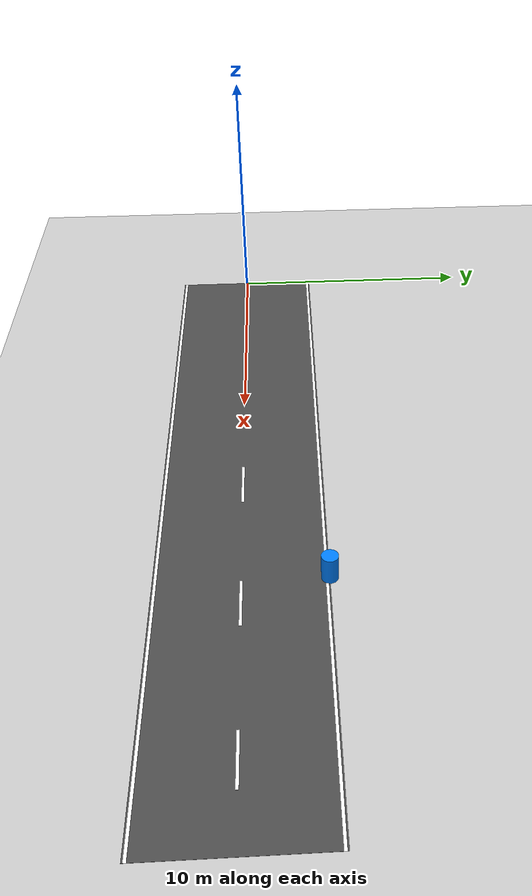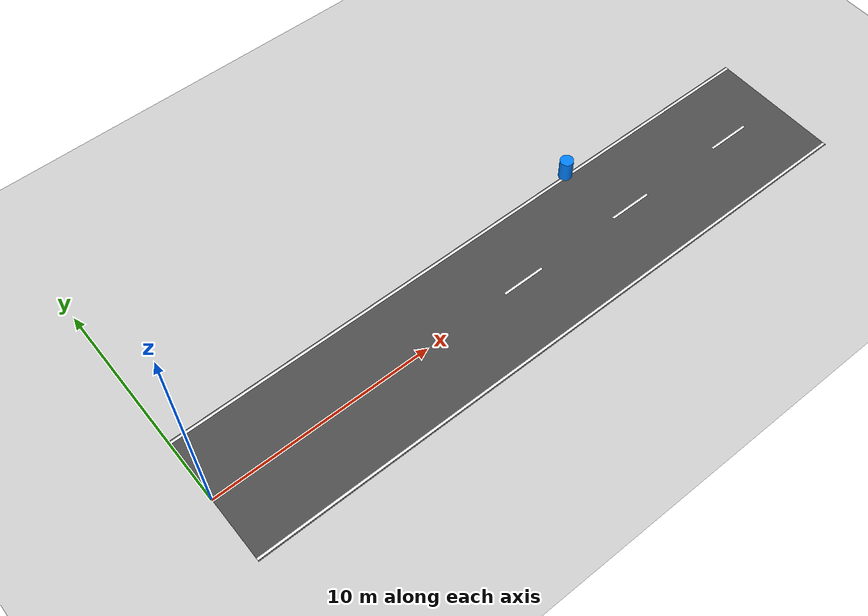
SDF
<sdf version="1.6">
 <world name="default">
  <plugin name="gazebo_ros_state" filename="libgazebo_ros_state.so">
   <ros><namespace>/gazebo</namespace></ros>
  </plugin>
  <include><uri>model://sun</uri></include>
  <include><uri>model://ground_plane</uri></include>
  <model name="custom_highway">
   <static>true</static>
   <link name="link">
    <collision name="road_collision">
     <pose>15 0 0 0 0 0</pose>
     <geometry><box><size>30 6 0.01</size></box></geometry>
    </collision>
    <visual name="road_visual">
     <pose>15 0 0 0 0 0</pose>
     <geometry><box><size>30 6 0.01</size></box></geometry>
     <material><ambient>0.3 0.3 0.3 1</ambient><diffuse>0.3 0.3 0.3 1</diffuse></material>
    </visual>
    <visual name="left_line">
     <pose>15 2.9 0.006 0 0 0</pose>
     <geometry><box><size>30 0.1 0.01</size></box></geometry>
     <material><ambient>1 1 1 1</ambient></material>
    </visual>
    <visual name="right_line">
     <pose>15 -2.9 0.006 0 0 0</pose>
     <geometry><box><size>30 0.1 0.01</size></box></geometry>
     <material><ambient>1 1 1 1</ambient></material>
    </visual>
    <visual name="dash_1">
     <pose>3 0 0.006 0 0 0</pose>
     <geometry><box><size>2 0.1 0.01</size></box></geometry>
     <material><ambient>1 1 1 1</ambient></material>
    </visual>
    <visual name="dash_2">
     <pose>9 0 0.006 0 0 0</pose>
     <geometry><box><size>2 0.1 0.01</size></box></geometry>
     <material><ambient>1 1 1 1</ambient></material>
    </visual>
    <visual name="dash_3">
     <pose>15 0 0.006 0 0 0</pose>
     <geometry><box><size>2 0.1 0.01</size></box></geometry>
     <material><ambient>1 1 1 1</ambient></material>
    </visual>
    <visual name="dash_4">
     <pose>21 0 0.006 0 0 0</pose>
     <geometry><box><size>2 0.1 0.01</size></box></geometry>
     <material><ambient>1 1 1 1</ambient></material>
    </visual>
    <visual name="dash_5">
     <pose>27 0 0.006 0 0 0</pose>
     <geometry><box><size>2 0.1 0.01</size></box></geometry>
     <material><ambient>1 1 1 1</ambient></material>
    </visual>
   </link>
  </model>
  <model name="dynamic_pedestrian">
   <pose>20 3.0 0.5 0 0 0</pose>
   <link name="link">
    <collision name="collision">
     <geometry><cylinder><radius>0.3</radius><length>1.0</length></cylinder></geometry>
    </collision>
    <visual name="visual">
     <geometry><cylinder><radius>0.3</radius><length>1.0</length></cylinder></geometry>
     <material><ambient>0 0.5 1 1</ambient></material>
    </visual>
   </link>
  </model>
 </world>
</sdf>
